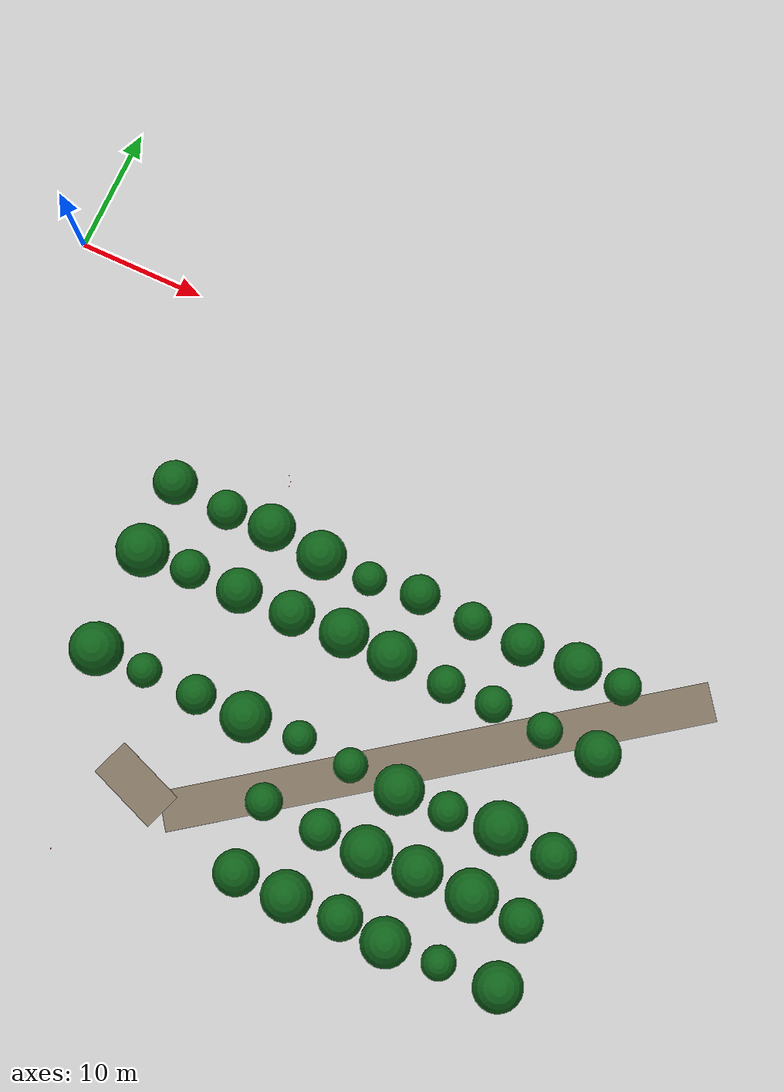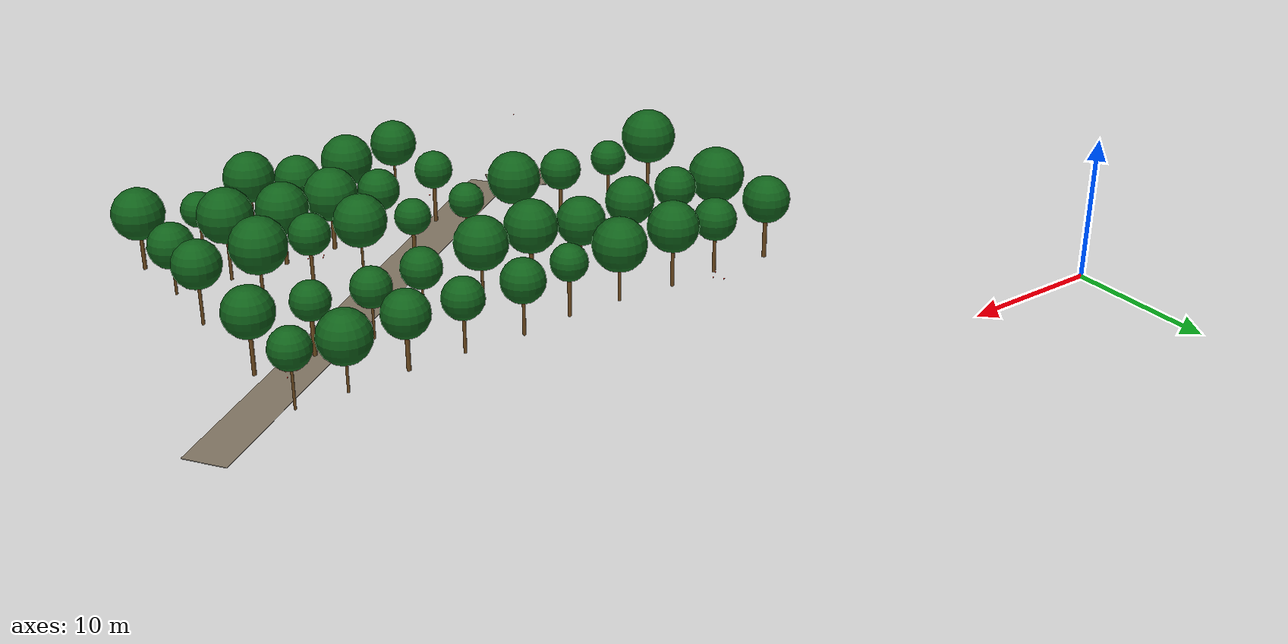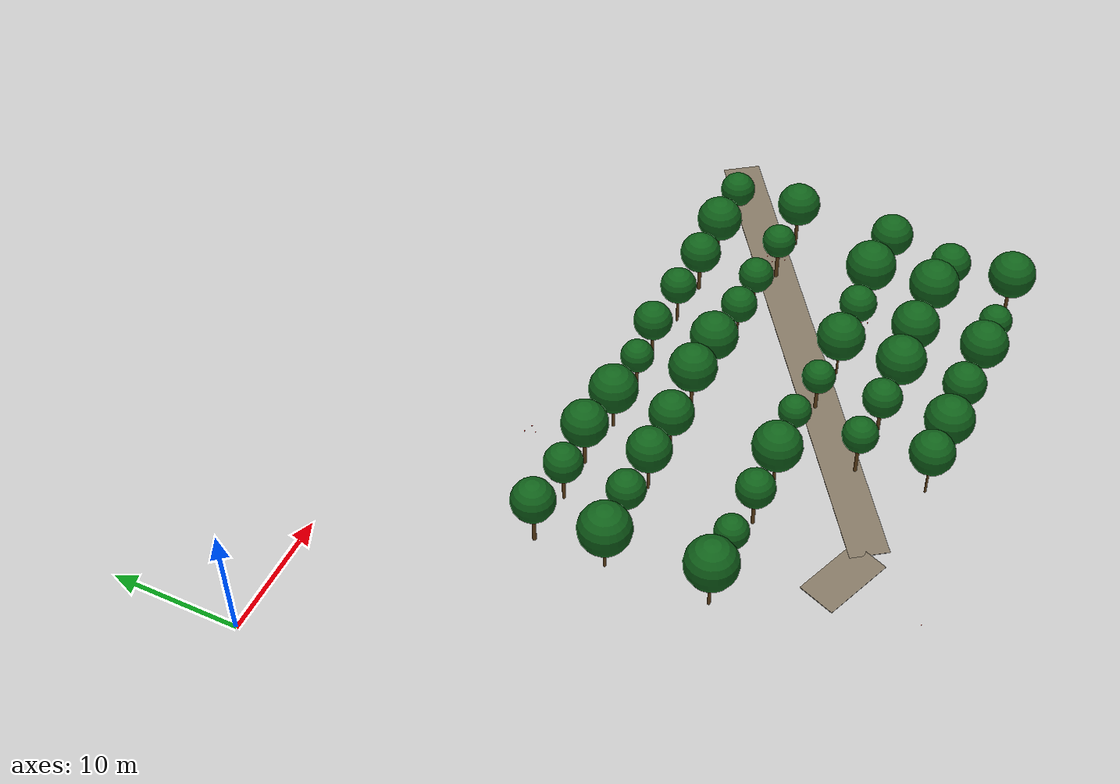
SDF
<sdf version="1.9">
 <world name="cheongsong_orchard">
  <model name="road_10">
   <static>true</static>
   <pose>41.6 -24.8 0.02 0 0 0.6248</pose>
   <link name="link">
    <collision name="collision">
     <geometry><box><size>41.4 3.0 0.04</size></box></geometry>
     <surface><friction><ode><mu>0.9</mu><mu2>0.9</mu2></ode></friction></surface>
    </collision>
    <visual name="visual">
     <geometry><box><size>41.4 3.0 0.04</size></box></geometry>
     <material><ambient>0.4 0.35 0.28 1</ambient><diffuse>0.5 0.45 0.38 1</diffuse></material>
    </visual>
   </link>
  </model>
  <model name="road_17">
   <static>true</static>
   <pose>22.2 -35.9 0.02 0 0 -0.3609</pose>
   <link name="link">
    <collision name="collision">
     <geometry><box><size>5.7 3.0 0.04</size></box></geometry>
     <surface><friction><ode><mu>0.9</mu><mu2>0.9</mu2></ode></friction></surface>
    </collision>
    <visual name="visual">
     <geometry><box><size>5.7 3.0 0.04</size></box></geometry>
     <material><ambient>0.4 0.35 0.28 1</ambient><diffuse>0.5 0.45 0.38 1</diffuse></material>
    </visual>
   </link>
  </model>
  <model name="apple_tree_868">
   <static>true</static>
   <pose>32.01 -38.45 0 0 0 0</pose>
   <link name="link">
    <collision name="trunk_col">
     <pose>0 0 1.37 0 0 0</pose>
     <geometry><cylinder><radius>0.088</radius><length>2.75</length></cylinder></geometry>
    </collision>
    <visual name="trunk_vis">
     <pose>0 0 1.37 0 0 0</pose>
     <geometry><cylinder><radius>0.088</radius><length>2.75</length></cylinder></geometry>
     <material><ambient>0.35 0.22 0.08 1</ambient><diffuse>0.45 0.30 0.12 1</diffuse></material>
    </visual>
    <collision name="canopy_col">
     <pose>0 0 4.42 0 0 0</pose>
     <geometry><sphere><radius>1.68</radius></sphere></geometry>
    </collision>
    <visual name="canopy_vis">
     <pose>0 0 4.42 0 0 0</pose>
     <geometry><sphere><radius>1.68</radius></sphere></geometry>
     <material><ambient>0.04 0.28 0.06 1</ambient><diffuse>0.06 0.38 0.10 1</diffuse></material>
    </visual>
   </link>
  </model>
  <model name="apple_tree_869">
   <static>true</static>
   <pose>35.88 -38.45 0 0 0 0</pose>
   <link name="link">
    <collision name="trunk_col">
     <pose>0 0 1.07 0 0 0</pose>
     <geometry><cylinder><radius>0.104</radius><length>2.15</length></cylinder></geometry>
    </collision>
    <visual name="trunk_vis">
     <pose>0 0 1.07 0 0 0</pose>
     <geometry><cylinder><radius>0.104</radius><length>2.15</length></cylinder></geometry>
     <material><ambient>0.35 0.22 0.08 1</ambient><diffuse>0.45 0.30 0.12 1</diffuse></material>
    </visual>
    <collision name="canopy_col">
     <pose>0 0 4.02 0 0 0</pose>
     <geometry><sphere><radius>1.87</radius></sphere></geometry>
    </collision>
    <visual name="canopy_vis">
     <pose>0 0 4.02 0 0 0</pose>
     <geometry><sphere><radius>1.87</radius></sphere></geometry>
     <material><ambient>0.04 0.28 0.06 1</ambient><diffuse>0.06 0.38 0.10 1</diffuse></material>
    </visual>
   </link>
  </model>
  <model name="apple_tree_870">
   <static>true</static>
   <pose>39.95 -38.25 0 0 0 0</pose>
   <link name="link">
    <collision name="trunk_col">
     <pose>0 0 1.03 0 0 0</pose>
     <geometry><cylinder><radius>0.128</radius><length>2.07</length></cylinder></geometry>
    </collision>
    <visual name="trunk_vis">
     <pose>0 0 1.03 0 0 0</pose>
     <geometry><cylinder><radius>0.128</radius><length>2.07</length></cylinder></geometry>
     <material><ambient>0.35 0.22 0.08 1</ambient><diffuse>0.45 0.30 0.12 1</diffuse></material>
    </visual>
    <collision name="canopy_col">
     <pose>0 0 3.70 0 0 0</pose>
     <geometry><sphere><radius>1.64</radius></sphere></geometry>
    </collision>
    <visual name="canopy_vis">
     <pose>0 0 3.70 0 0 0</pose>
     <geometry><sphere><radius>1.64</radius></sphere></geometry>
     <material><ambient>0.04 0.28 0.06 1</ambient><diffuse>0.06 0.38 0.10 1</diffuse></material>
    </visual>
   </link>
  </model>
  <model name="apple_tree_871">
   <static>true</static>
   <pose>43.53 -38.43 0 0 0 0</pose>
   <link name="link">
    <collision name="trunk_col">
     <pose>0 0 1.39 0 0 0</pose>
     <geometry><cylinder><radius>0.123</radius><length>2.78</length></cylinder></geometry>
    </collision>
    <visual name="trunk_vis">
     <pose>0 0 1.39 0 0 0</pose>
     <geometry><cylinder><radius>0.123</radius><length>2.78</length></cylinder></geometry>
     <material><ambient>0.35 0.22 0.08 1</ambient><diffuse>0.45 0.30 0.12 1</diffuse></material>
    </visual>
    <collision name="canopy_col">
     <pose>0 0 4.60 0 0 0</pose>
     <geometry><sphere><radius>1.82</radius></sphere></geometry>
    </collision>
    <visual name="canopy_vis">
     <pose>0 0 4.60 0 0 0</pose>
     <geometry><sphere><radius>1.82</radius></sphere></geometry>
     <material><ambient>0.04 0.28 0.06 1</ambient><diffuse>0.06 0.38 0.10 1</diffuse></material>
    </visual>
   </link>
  </model>
  <model name="apple_tree_872">
   <static>true</static>
   <pose>47.52 -38.20 0 0 0 0</pose>
   <link name="link">
    <collision name="trunk_col">
     <pose>0 0 0.98 0 0 0</pose>
     <geometry><cylinder><radius>0.093</radius><length>1.96</length></cylinder></geometry>
    </collision>
    <visual name="trunk_vis">
     <pose>0 0 0.98 0 0 0</pose>
     <geometry><cylinder><radius>0.093</radius><length>1.96</length></cylinder></geometry>
     <material><ambient>0.35 0.22 0.08 1</ambient><diffuse>0.45 0.30 0.12 1</diffuse></material>
    </visual>
    <collision name="canopy_col">
     <pose>0 0 3.23 0 0 0</pose>
     <geometry><sphere><radius>1.27</radius></sphere></geometry>
    </collision>
    <visual name="canopy_vis">
     <pose>0 0 3.23 0 0 0</pose>
     <geometry><sphere><radius>1.27</radius></sphere></geometry>
     <material><ambient>0.04 0.28 0.06 1</ambient><diffuse>0.06 0.38 0.10 1</diffuse></material>
    </visual>
   </link>
  </model>
  <model name="apple_tree_873">
   <static>true</static>
   <pose>51.90 -37.96 0 0 0 0</pose>
   <link name="link">
    <collision name="trunk_col">
     <pose>0 0 1.18 0 0 0</pose>
     <geometry><cylinder><radius>0.137</radius><length>2.36</length></cylinder></geometry>
    </collision>
    <visual name="trunk_vis">
     <pose>0 0 1.18 0 0 0</pose>
     <geometry><cylinder><radius>0.137</radius><length>2.36</length></cylinder></geometry>
     <material><ambient>0.35 0.22 0.08 1</ambient><diffuse>0.45 0.30 0.12 1</diffuse></material>
    </visual>
    <collision name="canopy_col">
     <pose>0 0 4.17 0 0 0</pose>
     <geometry><sphere><radius>1.82</radius></sphere></geometry>
    </collision>
    <visual name="canopy_vis">
     <pose>0 0 4.17 0 0 0</pose>
     <geometry><sphere><radius>1.82</radius></sphere></geometry>
     <material><ambient>0.04 0.28 0.06 1</ambient><diffuse>0.06 0.38 0.10 1</diffuse></material>
    </visual>
   </link>
  </model>
  <model name="apple_tree_920">
   <static>true</static>
   <pose>31.63 -33.17 0 0 0 0</pose>
   <link name="link">
    <collision name="trunk_col">
     <pose>0 0 1.36 0 0 0</pose>
     <geometry><cylinder><radius>0.134</radius><length>2.71</length></cylinder></geometry>
    </collision>
    <visual name="trunk_vis">
     <pose>0 0 1.36 0 0 0</pose>
     <geometry><cylinder><radius>0.134</radius><length>2.71</length></cylinder></geometry>
     <material><ambient>0.35 0.22 0.08 1</ambient><diffuse>0.45 0.30 0.12 1</diffuse></material>
    </visual>
    <collision name="canopy_col">
     <pose>0 0 4.07 0 0 0</pose>
     <geometry><sphere><radius>1.36</radius></sphere></geometry>
    </collision>
    <visual name="canopy_vis">
     <pose>0 0 4.07 0 0 0</pose>
     <geometry><sphere><radius>1.36</radius></sphere></geometry>
     <material><ambient>0.04 0.28 0.06 1</ambient><diffuse>0.06 0.38 0.10 1</diffuse></material>
    </visual>
   </link>
  </model>
  <model name="apple_tree_921">
   <static>true</static>
   <pose>36.06 -33.27 0 0 0 0</pose>
   <link name="link">
    <collision name="trunk_col">
     <pose>0 0 1.05 0 0 0</pose>
     <geometry><cylinder><radius>0.140</radius><length>2.09</length></cylinder></geometry>
    </collision>
    <visual name="trunk_vis">
     <pose>0 0 1.05 0 0 0</pose>
     <geometry><cylinder><radius>0.140</radius><length>2.09</length></cylinder></geometry>
     <material><ambient>0.35 0.22 0.08 1</ambient><diffuse>0.45 0.30 0.12 1</diffuse></material>
    </visual>
    <collision name="canopy_col">
     <pose>0 0 3.59 0 0 0</pose>
     <geometry><sphere><radius>1.50</radius></sphere></geometry>
    </collision>
    <visual name="canopy_vis">
     <pose>0 0 3.59 0 0 0</pose>
     <geometry><sphere><radius>1.50</radius></sphere></geometry>
     <material><ambient>0.04 0.28 0.06 1</ambient><diffuse>0.06 0.38 0.10 1</diffuse></material>
    </visual>
   </link>
  </model>
  <model name="apple_tree_922">
   <static>true</static>
   <pose>39.73 -33.32 0 0 0 0</pose>
   <link name="link">
    <collision name="trunk_col">
     <pose>0 0 1.15 0 0 0</pose>
     <geometry><cylinder><radius>0.148</radius><length>2.29</length></cylinder></geometry>
    </collision>
    <visual name="trunk_vis">
     <pose>0 0 1.15 0 0 0</pose>
     <geometry><cylinder><radius>0.148</radius><length>2.29</length></cylinder></geometry>
     <material><ambient>0.35 0.22 0.08 1</ambient><diffuse>0.45 0.30 0.12 1</diffuse></material>
    </visual>
    <collision name="canopy_col">
     <pose>0 0 4.19 0 0 0</pose>
     <geometry><sphere><radius>1.90</radius></sphere></geometry>
    </collision>
    <visual name="canopy_vis">
     <pose>0 0 4.19 0 0 0</pose>
     <geometry><sphere><radius>1.90</radius></sphere></geometry>
     <material><ambient>0.04 0.28 0.06 1</ambient><diffuse>0.06 0.38 0.10 1</diffuse></material>
    </visual>
   </link>
  </model>
  <model name="apple_tree_923">
   <static>true</static>
   <pose>43.56 -33.05 0 0 0 0</pose>
   <link name="link">
    <collision name="trunk_col">
     <pose>0 0 1.19 0 0 0</pose>
     <geometry><cylinder><radius>0.149</radius><length>2.38</length></cylinder></geometry>
    </collision>
    <visual name="trunk_vis">
     <pose>0 0 1.19 0 0 0</pose>
     <geometry><cylinder><radius>0.149</radius><length>2.38</length></cylinder></geometry>
     <material><ambient>0.35 0.22 0.08 1</ambient><diffuse>0.45 0.30 0.12 1</diffuse></material>
    </visual>
    <collision name="canopy_col">
     <pose>0 0 4.23 0 0 0</pose>
     <geometry><sphere><radius>1.84</radius></sphere></geometry>
    </collision>
    <visual name="canopy_vis">
     <pose>0 0 4.23 0 0 0</pose>
     <geometry><sphere><radius>1.84</radius></sphere></geometry>
     <material><ambient>0.04 0.28 0.06 1</ambient><diffuse>0.06 0.38 0.10 1</diffuse></material>
    </visual>
   </link>
  </model>
  <model name="apple_tree_924">
   <static>true</static>
   <pose>47.68 -33.01 0 0 0 0</pose>
   <link name="link">
    <collision name="trunk_col">
     <pose>0 0 1.45 0 0 0</pose>
     <geometry><cylinder><radius>0.110</radius><length>2.90</length></cylinder></geometry>
    </collision>
    <visual name="trunk_vis">
     <pose>0 0 1.45 0 0 0</pose>
     <geometry><cylinder><radius>0.110</radius><length>2.90</length></cylinder></geometry>
     <material><ambient>0.35 0.22 0.08 1</ambient><diffuse>0.45 0.30 0.12 1</diffuse></material>
    </visual>
    <collision name="canopy_col">
     <pose>0 0 4.81 0 0 0</pose>
     <geometry><sphere><radius>1.92</radius></sphere></geometry>
    </collision>
    <visual name="canopy_vis">
     <pose>0 0 4.81 0 0 0</pose>
     <geometry><sphere><radius>1.92</radius></sphere></geometry>
     <material><ambient>0.04 0.28 0.06 1</ambient><diffuse>0.06 0.38 0.10 1</diffuse></material>
    </visual>
   </link>
  </model>
  <model name="apple_tree_925">
   <static>true</static>
   <pose>51.59 -33.14 0 0 0 0</pose>
   <link name="link">
    <collision name="trunk_col">
     <pose>0 0 1.02 0 0 0</pose>
     <geometry><cylinder><radius>0.095</radius><length>2.03</length></cylinder></geometry>
    </collision>
    <visual name="trunk_vis">
     <pose>0 0 1.02 0 0 0</pose>
     <geometry><cylinder><radius>0.095</radius><length>2.03</length></cylinder></geometry>
     <material><ambient>0.35 0.22 0.08 1</ambient><diffuse>0.45 0.30 0.12 1</diffuse></material>
    </visual>
    <collision name="canopy_col">
     <pose>0 0 3.61 0 0 0</pose>
     <geometry><sphere><radius>1.58</radius></sphere></geometry>
    </collision>
    <visual name="canopy_vis">
     <pose>0 0 3.61 0 0 0</pose>
     <geometry><sphere><radius>1.58</radius></sphere></geometry>
     <material><ambient>0.04 0.28 0.06 1</ambient><diffuse>0.06 0.38 0.10 1</diffuse></material>
    </visual>
   </link>
  </model>
  <model name="apple_tree_973">
   <static>true</static>
   <pose>16.05 -28.33 0 0 0 0</pose>
   <link name="link">
    <collision name="trunk_col">
     <pose>0 0 1.31 0 0 0</pose>
     <geometry><cylinder><radius>0.121</radius><length>2.63</length></cylinder></geometry>
    </collision>
    <visual name="trunk_vis">
     <pose>0 0 1.31 0 0 0</pose>
     <geometry><cylinder><radius>0.121</radius><length>2.63</length></cylinder></geometry>
     <material><ambient>0.35 0.22 0.08 1</ambient><diffuse>0.45 0.30 0.12 1</diffuse></material>
    </visual>
    <collision name="canopy_col">
     <pose>0 0 4.62 0 0 0</pose>
     <geometry><sphere><radius>1.99</radius></sphere></geometry>
    </collision>
    <visual name="canopy_vis">
     <pose>0 0 4.62 0 0 0</pose>
     <geometry><sphere><radius>1.99</radius></sphere></geometry>
     <material><ambient>0.04 0.28 0.06 1</ambient><diffuse>0.06 0.38 0.10 1</diffuse></material>
    </visual>
   </link>
  </model>
  <model name="apple_tree_974">
   <static>true</static>
   <pose>19.74 -28.26 0 0 0 0</pose>
   <link name="link">
    <collision name="trunk_col">
     <pose>0 0 1.25 0 0 0</pose>
     <geometry><cylinder><radius>0.137</radius><length>2.51</length></cylinder></geometry>
    </collision>
    <visual name="trunk_vis">
     <pose>0 0 1.25 0 0 0</pose>
     <geometry><cylinder><radius>0.137</radius><length>2.51</length></cylinder></geometry>
     <material><ambient>0.35 0.22 0.08 1</ambient><diffuse>0.45 0.30 0.12 1</diffuse></material>
    </visual>
    <collision name="canopy_col">
     <pose>0 0 3.79 0 0 0</pose>
     <geometry><sphere><radius>1.28</radius></sphere></geometry>
    </collision>
    <visual name="canopy_vis">
     <pose>0 0 3.79 0 0 0</pose>
     <geometry><sphere><radius>1.28</radius></sphere></geometry>
     <material><ambient>0.04 0.28 0.06 1</ambient><diffuse>0.06 0.38 0.10 1</diffuse></material>
    </visual>
   </link>
  </model>
  <model name="apple_tree_975">
   <static>true</static>
   <pose>23.92 -28.29 0 0 0 0</pose>
   <link name="link">
    <collision name="trunk_col">
     <pose>0 0 1.22 0 0 0</pose>
     <geometry><cylinder><radius>0.134</radius><length>2.44</length></cylinder></geometry>
    </collision>
    <visual name="trunk_vis">
     <pose>0 0 1.22 0 0 0</pose>
     <geometry><cylinder><radius>0.134</radius><length>2.44</length></cylinder></geometry>
     <material><ambient>0.35 0.22 0.08 1</ambient><diffuse>0.45 0.30 0.12 1</diffuse></material>
    </visual>
    <collision name="canopy_col">
     <pose>0 0 3.91 0 0 0</pose>
     <geometry><sphere><radius>1.47</radius></sphere></geometry>
    </collision>
    <visual name="canopy_vis">
     <pose>0 0 3.91 0 0 0</pose>
     <geometry><sphere><radius>1.47</radius></sphere></geometry>
     <material><ambient>0.04 0.28 0.06 1</ambient><diffuse>0.06 0.38 0.10 1</diffuse></material>
    </visual>
   </link>
  </model>
  <model name="apple_tree_976">
   <static>true</static>
   <pose>27.88 -28.27 0 0 0 0</pose>
   <link name="link">
    <collision name="trunk_col">
     <pose>0 0 1.19 0 0 0</pose>
     <geometry><cylinder><radius>0.115</radius><length>2.38</length></cylinder></geometry>
    </collision>
    <visual name="trunk_vis">
     <pose>0 0 1.19 0 0 0</pose>
     <geometry><cylinder><radius>0.115</radius><length>2.38</length></cylinder></geometry>
     <material><ambient>0.35 0.22 0.08 1</ambient><diffuse>0.45 0.30 0.12 1</diffuse></material>
    </visual>
    <collision name="canopy_col">
     <pose>0 0 4.25 0 0 0</pose>
     <geometry><sphere><radius>1.88</radius></sphere></geometry>
    </collision>
    <visual name="canopy_vis">
     <pose>0 0 4.25 0 0 0</pose>
     <geometry><sphere><radius>1.88</radius></sphere></geometry>
     <material><ambient>0.04 0.28 0.06 1</ambient><diffuse>0.06 0.38 0.10 1</diffuse></material>
    </visual>
   </link>
  </model>
  <model name="apple_tree_977">
   <static>true</static>
   <pose>31.98 -27.99 0 0 0 0</pose>
   <link name="link">
    <collision name="trunk_col">
     <pose>0 0 1.24 0 0 0</pose>
     <geometry><cylinder><radius>0.100</radius><length>2.47</length></cylinder></geometry>
    </collision>
    <visual name="trunk_vis">
     <pose>0 0 1.24 0 0 0</pose>
     <geometry><cylinder><radius>0.100</radius><length>2.47</length></cylinder></geometry>
     <material><ambient>0.35 0.22 0.08 1</ambient><diffuse>0.45 0.30 0.12 1</diffuse></material>
    </visual>
    <collision name="canopy_col">
     <pose>0 0 3.71 0 0 0</pose>
     <geometry><sphere><radius>1.24</radius></sphere></geometry>
    </collision>
    <visual name="canopy_vis">
     <pose>0 0 3.71 0 0 0</pose>
     <geometry><sphere><radius>1.24</radius></sphere></geometry>
     <material><ambient>0.04 0.28 0.06 1</ambient><diffuse>0.06 0.38 0.10 1</diffuse></material>
    </visual>
   </link>
  </model>
  <model name="apple_tree_978">
   <static>true</static>
   <pose>36.11 -28.25 0 0 0 0</pose>
   <link name="link">
    <collision name="trunk_col">
     <pose>0 0 1.09 0 0 0</pose>
     <geometry><cylinder><radius>0.132</radius><length>2.17</length></cylinder></geometry>
    </collision>
    <visual name="trunk_vis">
     <pose>0 0 1.09 0 0 0</pose>
     <geometry><cylinder><radius>0.132</radius><length>2.17</length></cylinder></geometry>
     <material><ambient>0.35 0.22 0.08 1</ambient><diffuse>0.45 0.30 0.12 1</diffuse></material>
    </visual>
    <collision name="canopy_col">
     <pose>0 0 3.44 0 0 0</pose>
     <geometry><sphere><radius>1.27</radius></sphere></geometry>
    </collision>
    <visual name="canopy_vis">
     <pose>0 0 3.44 0 0 0</pose>
     <geometry><sphere><radius>1.27</radius></sphere></geometry>
     <material><ambient>0.04 0.28 0.06 1</ambient><diffuse>0.06 0.38 0.10 1</diffuse></material>
    </visual>
   </link>
  </model>
  <model name="apple_tree_979">
   <static>true</static>
   <pose>40.02 -28.43 0 0 0 0</pose>
   <link name="link">
    <collision name="trunk_col">
     <pose>0 0 1.14 0 0 0</pose>
     <geometry><cylinder><radius>0.085</radius><length>2.28</length></cylinder></geometry>
    </collision>
    <visual name="trunk_vis">
     <pose>0 0 1.14 0 0 0</pose>
     <geometry><cylinder><radius>0.085</radius><length>2.28</length></cylinder></geometry>
     <material><ambient>0.35 0.22 0.08 1</ambient><diffuse>0.45 0.30 0.12 1</diffuse></material>
    </visual>
    <collision name="canopy_col">
     <pose>0 0 4.12 0 0 0</pose>
     <geometry><sphere><radius>1.84</radius></sphere></geometry>
    </collision>
    <visual name="canopy_vis">
     <pose>0 0 4.12 0 0 0</pose>
     <geometry><sphere><radius>1.84</radius></sphere></geometry>
     <material><ambient>0.04 0.28 0.06 1</ambient><diffuse>0.06 0.38 0.10 1</diffuse></material>
    </visual>
   </link>
  </model>
  <model name="apple_tree_980">
   <static>true</static>
   <pose>43.80 -28.36 0 0 0 0</pose>
   <link name="link">
    <collision name="trunk_col">
     <pose>0 0 1.36 0 0 0</pose>
     <geometry><cylinder><radius>0.126</radius><length>2.73</length></cylinder></geometry>
    </collision>
    <visual name="trunk_vis">
     <pose>0 0 1.36 0 0 0</pose>
     <geometry><cylinder><radius>0.126</radius><length>2.73</length></cylinder></geometry>
     <material><ambient>0.35 0.22 0.08 1</ambient><diffuse>0.45 0.30 0.12 1</diffuse></material>
    </visual>
    <collision name="canopy_col">
     <pose>0 0 4.17 0 0 0</pose>
     <geometry><sphere><radius>1.44</radius></sphere></geometry>
    </collision>
    <visual name="canopy_vis">
     <pose>0 0 4.17 0 0 0</pose>
     <geometry><sphere><radius>1.44</radius></sphere></geometry>
     <material><ambient>0.04 0.28 0.06 1</ambient><diffuse>0.06 0.38 0.10 1</diffuse></material>
    </visual>
   </link>
  </model>
  <model name="apple_tree_981">
   <static>true</static>
   <pose>47.64 -27.91 0 0 0 0</pose>
   <link name="link">
    <collision name="trunk_col">
     <pose>0 0 1.34 0 0 0</pose>
     <geometry><cylinder><radius>0.113</radius><length>2.67</length></cylinder></geometry>
    </collision>
    <visual name="trunk_vis">
     <pose>0 0 1.34 0 0 0</pose>
     <geometry><cylinder><radius>0.113</radius><length>2.67</length></cylinder></geometry>
     <material><ambient>0.35 0.22 0.08 1</ambient><diffuse>0.45 0.30 0.12 1</diffuse></material>
    </visual>
    <collision name="canopy_col">
     <pose>0 0 4.62 0 0 0</pose>
     <geometry><sphere><radius>1.95</radius></sphere></geometry>
    </collision>
    <visual name="canopy_vis">
     <pose>0 0 4.62 0 0 0</pose>
     <geometry><sphere><radius>1.95</radius></sphere></geometry>
     <material><ambient>0.04 0.28 0.06 1</ambient><diffuse>0.06 0.38 0.10 1</diffuse></material>
    </visual>
   </link>
  </model>
  <model name="apple_tree_982">
   <static>true</static>
   <pose>51.83 -28.12 0 0 0 0</pose>
   <link name="link">
    <collision name="trunk_col">
     <pose>0 0 1.35 0 0 0</pose>
     <geometry><cylinder><radius>0.110</radius><length>2.70</length></cylinder></geometry>
    </collision>
    <visual name="trunk_vis">
     <pose>0 0 1.35 0 0 0</pose>
     <geometry><cylinder><radius>0.110</radius><length>2.70</length></cylinder></geometry>
     <material><ambient>0.35 0.22 0.08 1</ambient><diffuse>0.45 0.30 0.12 1</diffuse></material>
    </visual>
    <collision name="canopy_col">
     <pose>0 0 4.35 0 0 0</pose>
     <geometry><sphere><radius>1.65</radius></sphere></geometry>
    </collision>
    <visual name="canopy_vis">
     <pose>0 0 4.35 0 0 0</pose>
     <geometry><sphere><radius>1.65</radius></sphere></geometry>
     <material><ambient>0.04 0.28 0.06 1</ambient><diffuse>0.06 0.38 0.10 1</diffuse></material>
    </visual>
   </link>
  </model>
  <model name="apple_tree_1032">
   <static>true</static>
   <pose>15.81 -20.43 0 0 0 0</pose>
   <link name="link">
    <collision name="trunk_col">
     <pose>0 0 1.14 0 0 0</pose>
     <geometry><cylinder><radius>0.100</radius><length>2.27</length></cylinder></geometry>
    </collision>
    <visual name="trunk_vis">
     <pose>0 0 1.14 0 0 0</pose>
     <geometry><cylinder><radius>0.100</radius><length>2.27</length></cylinder></geometry>
     <material><ambient>0.35 0.22 0.08 1</ambient><diffuse>0.45 0.30 0.12 1</diffuse></material>
    </visual>
    <collision name="canopy_col">
     <pose>0 0 4.26 0 0 0</pose>
     <geometry><sphere><radius>1.99</radius></sphere></geometry>
    </collision>
    <visual name="canopy_vis">
     <pose>0 0 4.26 0 0 0</pose>
     <geometry><sphere><radius>1.99</radius></sphere></geometry>
     <material><ambient>0.04 0.28 0.06 1</ambient><diffuse>0.06 0.38 0.10 1</diffuse></material>
    </visual>
   </link>
  </model>
  <model name="apple_tree_1033">
   <static>true</static>
   <pose>19.58 -20.27 0 0 0 0</pose>
   <link name="link">
    <collision name="trunk_col">
     <pose>0 0 1.43 0 0 0</pose>
     <geometry><cylinder><radius>0.087</radius><length>2.86</length></cylinder></geometry>
    </collision>
    <visual name="trunk_vis">
     <pose>0 0 1.43 0 0 0</pose>
     <geometry><cylinder><radius>0.087</radius><length>2.86</length></cylinder></geometry>
     <material><ambient>0.35 0.22 0.08 1</ambient><diffuse>0.45 0.30 0.12 1</diffuse></material>
    </visual>
    <collision name="canopy_col">
     <pose>0 0 4.31 0 0 0</pose>
     <geometry><sphere><radius>1.46</radius></sphere></geometry>
    </collision>
    <visual name="canopy_vis">
     <pose>0 0 4.31 0 0 0</pose>
     <geometry><sphere><radius>1.46</radius></sphere></geometry>
     <material><ambient>0.04 0.28 0.06 1</ambient><diffuse>0.06 0.38 0.10 1</diffuse></material>
    </visual>
   </link>
  </model>
  <model name="apple_tree_1034">
   <static>true</static>
   <pose>23.53 -20.21 0 0 0 0</pose>
   <link name="link">
    <collision name="trunk_col">
     <pose>0 0 1.32 0 0 0</pose>
     <geometry><cylinder><radius>0.114</radius><length>2.64</length></cylinder></geometry>
    </collision>
    <visual name="trunk_vis">
     <pose>0 0 1.32 0 0 0</pose>
     <geometry><cylinder><radius>0.114</radius><length>2.64</length></cylinder></geometry>
     <material><ambient>0.35 0.22 0.08 1</ambient><diffuse>0.45 0.30 0.12 1</diffuse></material>
    </visual>
    <collision name="canopy_col">
     <pose>0 0 4.34 0 0 0</pose>
     <geometry><sphere><radius>1.70</radius></sphere></geometry>
    </collision>
    <visual name="canopy_vis">
     <pose>0 0 4.34 0 0 0</pose>
     <geometry><sphere><radius>1.70</radius></sphere></geometry>
     <material><ambient>0.04 0.28 0.06 1</ambient><diffuse>0.06 0.38 0.10 1</diffuse></material>
    </visual>
   </link>
  </model>
  <model name="apple_tree_1035">
   <static>true</static>
   <pose>27.67 -20.09 0 0 0 0</pose>
   <link name="link">
    <collision name="trunk_col">
     <pose>0 0 1.14 0 0 0</pose>
     <geometry><cylinder><radius>0.083</radius><length>2.27</length></cylinder></geometry>
    </collision>
    <visual name="trunk_vis">
     <pose>0 0 1.14 0 0 0</pose>
     <geometry><cylinder><radius>0.083</radius><length>2.27</length></cylinder></geometry>
     <material><ambient>0.35 0.22 0.08 1</ambient><diffuse>0.45 0.30 0.12 1</diffuse></material>
    </visual>
    <collision name="canopy_col">
     <pose>0 0 3.97 0 0 0</pose>
     <geometry><sphere><radius>1.70</radius></sphere></geometry>
    </collision>
    <visual name="canopy_vis">
     <pose>0 0 3.97 0 0 0</pose>
     <geometry><sphere><radius>1.70</radius></sphere></geometry>
     <material><ambient>0.04 0.28 0.06 1</ambient><diffuse>0.06 0.38 0.10 1</diffuse></material>
    </visual>
   </link>
  </model>
  <model name="apple_tree_1036">
   <static>true</static>
   <pose>31.78 -19.92 0 0 0 0</pose>
   <link name="link">
    <collision name="trunk_col">
     <pose>0 0 1.46 0 0 0</pose>
     <geometry><cylinder><radius>0.143</radius><length>2.92</length></cylinder></geometry>
    </collision>
    <visual name="trunk_vis">
     <pose>0 0 1.46 0 0 0</pose>
     <geometry><cylinder><radius>0.143</radius><length>2.92</length></cylinder></geometry>
     <material><ambient>0.35 0.22 0.08 1</ambient><diffuse>0.45 0.30 0.12 1</diffuse></material>
    </visual>
    <collision name="canopy_col">
     <pose>0 0 4.76 0 0 0</pose>
     <geometry><sphere><radius>1.84</radius></sphere></geometry>
    </collision>
    <visual name="canopy_vis">
     <pose>0 0 4.76 0 0 0</pose>
     <geometry><sphere><radius>1.84</radius></sphere></geometry>
     <material><ambient>0.04 0.28 0.06 1</ambient><diffuse>0.06 0.38 0.10 1</diffuse></material>
    </visual>
   </link>
  </model>
  <model name="apple_tree_1037">
   <static>true</static>
   <pose>35.59 -19.97 0 0 0 0</pose>
   <link name="link">
    <collision name="trunk_col">
     <pose>0 0 1.37 0 0 0</pose>
     <geometry><cylinder><radius>0.100</radius><length>2.73</length></cylinder></geometry>
    </collision>
    <visual name="trunk_vis">
     <pose>0 0 1.37 0 0 0</pose>
     <geometry><cylinder><radius>0.100</radius><length>2.73</length></cylinder></geometry>
     <material><ambient>0.35 0.22 0.08 1</ambient><diffuse>0.45 0.30 0.12 1</diffuse></material>
    </visual>
    <collision name="canopy_col">
     <pose>0 0 4.57 0 0 0</pose>
     <geometry><sphere><radius>1.84</radius></sphere></geometry>
    </collision>
    <visual name="canopy_vis">
     <pose>0 0 4.57 0 0 0</pose>
     <geometry><sphere><radius>1.84</radius></sphere></geometry>
     <material><ambient>0.04 0.28 0.06 1</ambient><diffuse>0.06 0.38 0.10 1</diffuse></material>
    </visual>
   </link>
  </model>
  <model name="apple_tree_1038">
   <static>true</static>
   <pose>39.96 -20.16 0 0 0 0</pose>
   <link name="link">
    <collision name="trunk_col">
     <pose>0 0 1.27 0 0 0</pose>
     <geometry><cylinder><radius>0.086</radius><length>2.54</length></cylinder></geometry>
    </collision>
    <visual name="trunk_vis">
     <pose>0 0 1.27 0 0 0</pose>
     <geometry><cylinder><radius>0.086</radius><length>2.54</length></cylinder></geometry>
     <material><ambient>0.35 0.22 0.08 1</ambient><diffuse>0.45 0.30 0.12 1</diffuse></material>
    </visual>
    <collision name="canopy_col">
     <pose>0 0 3.94 0 0 0</pose>
     <geometry><sphere><radius>1.40</radius></sphere></geometry>
    </collision>
    <visual name="canopy_vis">
     <pose>0 0 3.94 0 0 0</pose>
     <geometry><sphere><radius>1.40</radius></sphere></geometry>
     <material><ambient>0.04 0.28 0.06 1</ambient><diffuse>0.06 0.38 0.10 1</diffuse></material>
    </visual>
   </link>
  </model>
  <model name="apple_tree_1039">
   <static>true</static>
   <pose>43.65 -20.03 0 0 0 0</pose>
   <link name="link">
    <collision name="trunk_col">
     <pose>0 0 1.17 0 0 0</pose>
     <geometry><cylinder><radius>0.081</radius><length>2.34</length></cylinder></geometry>
    </collision>
    <visual name="trunk_vis">
     <pose>0 0 1.17 0 0 0</pose>
     <geometry><cylinder><radius>0.081</radius><length>2.34</length></cylinder></geometry>
     <material><ambient>0.35 0.22 0.08 1</ambient><diffuse>0.45 0.30 0.12 1</diffuse></material>
    </visual>
    <collision name="canopy_col">
     <pose>0 0 3.71 0 0 0</pose>
     <geometry><sphere><radius>1.37</radius></sphere></geometry>
    </collision>
    <visual name="canopy_vis">
     <pose>0 0 3.71 0 0 0</pose>
     <geometry><sphere><radius>1.37</radius></sphere></geometry>
     <material><ambient>0.04 0.28 0.06 1</ambient><diffuse>0.06 0.38 0.10 1</diffuse></material>
    </visual>
   </link>
  </model>
  <model name="apple_tree_1040">
   <static>true</static>
   <pose>47.74 -20.25 0 0 0 0</pose>
   <link name="link">
    <collision name="trunk_col">
     <pose>0 0 1.29 0 0 0</pose>
     <geometry><cylinder><radius>0.147</radius><length>2.58</length></cylinder></geometry>
    </collision>
    <visual name="trunk_vis">
     <pose>0 0 1.29 0 0 0</pose>
     <geometry><cylinder><radius>0.147</radius><length>2.58</length></cylinder></geometry>
     <material><ambient>0.35 0.22 0.08 1</ambient><diffuse>0.45 0.30 0.12 1</diffuse></material>
    </visual>
    <collision name="canopy_col">
     <pose>0 0 3.90 0 0 0</pose>
     <geometry><sphere><radius>1.32</radius></sphere></geometry>
    </collision>
    <visual name="canopy_vis">
     <pose>0 0 3.90 0 0 0</pose>
     <geometry><sphere><radius>1.32</radius></sphere></geometry>
     <material><ambient>0.04 0.28 0.06 1</ambient><diffuse>0.06 0.38 0.10 1</diffuse></material>
    </visual>
   </link>
  </model>
  <model name="apple_tree_1041">
   <static>true</static>
   <pose>51.85 -20.24 0 0 0 0</pose>
   <link name="link">
    <collision name="trunk_col">
     <pose>0 0 1.34 0 0 0</pose>
     <geometry><cylinder><radius>0.137</radius><length>2.69</length></cylinder></geometry>
    </collision>
    <visual name="trunk_vis">
     <pose>0 0 1.34 0 0 0</pose>
     <geometry><cylinder><radius>0.137</radius><length>2.69</length></cylinder></geometry>
     <material><ambient>0.35 0.22 0.08 1</ambient><diffuse>0.45 0.30 0.12 1</diffuse></material>
    </visual>
    <collision name="canopy_col">
     <pose>0 0 4.38 0 0 0</pose>
     <geometry><sphere><radius>1.69</radius></sphere></geometry>
    </collision>
    <visual name="canopy_vis">
     <pose>0 0 4.38 0 0 0</pose>
     <geometry><sphere><radius>1.69</radius></sphere></geometry>
     <material><ambient>0.04 0.28 0.06 1</ambient><diffuse>0.06 0.38 0.10 1</diffuse></material>
    </visual>
   </link>
  </model>
  <model name="apple_tree_1091">
   <static>true</static>
   <pose>15.78 -14.90 0 0 0 0</pose>
   <link name="link">
    <collision name="trunk_col">
     <pose>0 0 1.37 0 0 0</pose>
     <geometry><cylinder><radius>0.149</radius><length>2.74</length></cylinder></geometry>
    </collision>
    <visual name="trunk_vis">
     <pose>0 0 1.37 0 0 0</pose>
     <geometry><cylinder><radius>0.149</radius><length>2.74</length></cylinder></geometry>
     <material><ambient>0.35 0.22 0.08 1</ambient><diffuse>0.45 0.30 0.12 1</diffuse></material>
    </visual>
    <collision name="canopy_col">
     <pose>0 0 4.39 0 0 0</pose>
     <geometry><sphere><radius>1.65</radius></sphere></geometry>
    </collision>
    <visual name="canopy_vis">
     <pose>0 0 4.39 0 0 0</pose>
     <geometry><sphere><radius>1.65</radius></sphere></geometry>
     <material><ambient>0.04 0.28 0.06 1</ambient><diffuse>0.06 0.38 0.10 1</diffuse></material>
    </visual>
   </link>
  </model>
  <model name="apple_tree_1092">
   <static>true</static>
   <pose>20.05 -15.11 0 0 0 0</pose>
   <link name="link">
    <collision name="trunk_col">
     <pose>0 0 1.23 0 0 0</pose>
     <geometry><cylinder><radius>0.122</radius><length>2.47</length></cylinder></geometry>
    </collision>
    <visual name="trunk_vis">
     <pose>0 0 1.23 0 0 0</pose>
     <geometry><cylinder><radius>0.122</radius><length>2.47</length></cylinder></geometry>
     <material><ambient>0.35 0.22 0.08 1</ambient><diffuse>0.45 0.30 0.12 1</diffuse></material>
    </visual>
    <collision name="canopy_col">
     <pose>0 0 3.95 0 0 0</pose>
     <geometry><sphere><radius>1.48</radius></sphere></geometry>
    </collision>
    <visual name="canopy_vis">
     <pose>0 0 3.95 0 0 0</pose>
     <geometry><sphere><radius>1.48</radius></sphere></geometry>
     <material><ambient>0.04 0.28 0.06 1</ambient><diffuse>0.06 0.38 0.10 1</diffuse></material>
    </visual>
   </link>
  </model>
  <model name="apple_tree_1093">
   <static>true</static>
   <pose>23.68 -15.02 0 0 0 0</pose>
   <link name="link">
    <collision name="trunk_col">
     <pose>0 0 1.32 0 0 0</pose>
     <geometry><cylinder><radius>0.127</radius><length>2.65</length></cylinder></geometry>
    </collision>
    <visual name="trunk_vis">
     <pose>0 0 1.32 0 0 0</pose>
     <geometry><cylinder><radius>0.127</radius><length>2.65</length></cylinder></geometry>
     <material><ambient>0.35 0.22 0.08 1</ambient><diffuse>0.45 0.30 0.12 1</diffuse></material>
    </visual>
    <collision name="canopy_col">
     <pose>0 0 4.42 0 0 0</pose>
     <geometry><sphere><radius>1.77</radius></sphere></geometry>
    </collision>
    <visual name="canopy_vis">
     <pose>0 0 4.42 0 0 0</pose>
     <geometry><sphere><radius>1.77</radius></sphere></geometry>
     <material><ambient>0.04 0.28 0.06 1</ambient><diffuse>0.06 0.38 0.10 1</diffuse></material>
    </visual>
   </link>
  </model>
  <model name="apple_tree_1094">
   <static>true</static>
   <pose>27.82 -15.34 0 0 0 0</pose>
   <link name="link">
    <collision name="trunk_col">
     <pose>0 0 1.13 0 0 0</pose>
     <geometry><cylinder><radius>0.121</radius><length>2.27</length></cylinder></geometry>
    </collision>
    <visual name="trunk_vis">
     <pose>0 0 1.13 0 0 0</pose>
     <geometry><cylinder><radius>0.121</radius><length>2.27</length></cylinder></geometry>
     <material><ambient>0.35 0.22 0.08 1</ambient><diffuse>0.45 0.30 0.12 1</diffuse></material>
    </visual>
    <collision name="canopy_col">
     <pose>0 0 4.13 0 0 0</pose>
     <geometry><sphere><radius>1.86</radius></sphere></geometry>
    </collision>
    <visual name="canopy_vis">
     <pose>0 0 4.13 0 0 0</pose>
     <geometry><sphere><radius>1.86</radius></sphere></geometry>
     <material><ambient>0.04 0.28 0.06 1</ambient><diffuse>0.06 0.38 0.10 1</diffuse></material>
    </visual>
   </link>
  </model>
  <model name="apple_tree_1095">
   <static>true</static>
   <pose>31.73 -15.43 0 0 0 0</pose>
   <link name="link">
    <collision name="trunk_col">
     <pose>0 0 1.32 0 0 0</pose>
     <geometry><cylinder><radius>0.138</radius><length>2.64</length></cylinder></geometry>
    </collision>
    <visual name="trunk_vis">
     <pose>0 0 1.32 0 0 0</pose>
     <geometry><cylinder><radius>0.138</radius><length>2.64</length></cylinder></geometry>
     <material><ambient>0.35 0.22 0.08 1</ambient><diffuse>0.45 0.30 0.12 1</diffuse></material>
    </visual>
    <collision name="canopy_col">
     <pose>0 0 3.91 0 0 0</pose>
     <geometry><sphere><radius>1.27</radius></sphere></geometry>
    </collision>
    <visual name="canopy_vis">
     <pose>0 0 3.91 0 0 0</pose>
     <geometry><sphere><radius>1.27</radius></sphere></geometry>
     <material><ambient>0.04 0.28 0.06 1</ambient><diffuse>0.06 0.38 0.10 1</diffuse></material>
    </visual>
   </link>
  </model>
  <model name="apple_tree_1096">
   <static>true</static>
   <pose>35.55 -14.96 0 0 0 0</pose>
   <link name="link">
    <collision name="trunk_col">
     <pose>0 0 1.21 0 0 0</pose>
     <geometry><cylinder><radius>0.111</radius><length>2.41</length></cylinder></geometry>
    </collision>
    <visual name="trunk_vis">
     <pose>0 0 1.21 0 0 0</pose>
     <geometry><cylinder><radius>0.111</radius><length>2.41</length></cylinder></geometry>
     <material><ambient>0.35 0.22 0.08 1</ambient><diffuse>0.45 0.30 0.12 1</diffuse></material>
    </visual>
    <collision name="canopy_col">
     <pose>0 0 3.91 0 0 0</pose>
     <geometry><sphere><radius>1.50</radius></sphere></geometry>
    </collision>
    <visual name="canopy_vis">
     <pose>0 0 3.91 0 0 0</pose>
     <geometry><sphere><radius>1.50</radius></sphere></geometry>
     <material><ambient>0.04 0.28 0.06 1</ambient><diffuse>0.06 0.38 0.10 1</diffuse></material>
    </visual>
   </link>
  </model>
  <model name="apple_tree_1097">
   <static>true</static>
   <pose>39.83 -15.14 0 0 0 0</pose>
   <link name="link">
    <collision name="trunk_col">
     <pose>0 0 1.23 0 0 0</pose>
     <geometry><cylinder><radius>0.108</radius><length>2.46</length></cylinder></geometry>
    </collision>
    <visual name="trunk_vis">
     <pose>0 0 1.23 0 0 0</pose>
     <geometry><cylinder><radius>0.108</radius><length>2.46</length></cylinder></geometry>
     <material><ambient>0.35 0.22 0.08 1</ambient><diffuse>0.45 0.30 0.12 1</diffuse></material>
    </visual>
    <collision name="canopy_col">
     <pose>0 0 3.87 0 0 0</pose>
     <geometry><sphere><radius>1.41</radius></sphere></geometry>
    </collision>
    <visual name="canopy_vis">
     <pose>0 0 3.87 0 0 0</pose>
     <geometry><sphere><radius>1.41</radius></sphere></geometry>
     <material><ambient>0.04 0.28 0.06 1</ambient><diffuse>0.06 0.38 0.10 1</diffuse></material>
    </visual>
   </link>
  </model>
  <model name="apple_tree_1098">
   <static>true</static>
   <pose>43.81 -15.24 0 0 0 0</pose>
   <link name="link">
    <collision name="trunk_col">
     <pose>0 0 1.19 0 0 0</pose>
     <geometry><cylinder><radius>0.145</radius><length>2.38</length></cylinder></geometry>
    </collision>
    <visual name="trunk_vis">
     <pose>0 0 1.19 0 0 0</pose>
     <geometry><cylinder><radius>0.145</radius><length>2.38</length></cylinder></geometry>
     <material><ambient>0.35 0.22 0.08 1</ambient><diffuse>0.45 0.30 0.12 1</diffuse></material>
    </visual>
    <collision name="canopy_col">
     <pose>0 0 3.97 0 0 0</pose>
     <geometry><sphere><radius>1.59</radius></sphere></geometry>
    </collision>
    <visual name="canopy_vis">
     <pose>0 0 3.97 0 0 0</pose>
     <geometry><sphere><radius>1.59</radius></sphere></geometry>
     <material><ambient>0.04 0.28 0.06 1</ambient><diffuse>0.06 0.38 0.10 1</diffuse></material>
    </visual>
   </link>
  </model>
  <model name="apple_tree_1099">
   <static>true</static>
   <pose>48.09 -15.00 0 0 0 0</pose>
   <link name="link">
    <collision name="trunk_col">
     <pose>0 0 1.05 0 0 0</pose>
     <geometry><cylinder><radius>0.089</radius><length>2.09</length></cylinder></geometry>
    </collision>
    <visual name="trunk_vis">
     <pose>0 0 1.05 0 0 0</pose>
     <geometry><cylinder><radius>0.089</radius><length>2.09</length></cylinder></geometry>
     <material><ambient>0.35 0.22 0.08 1</ambient><diffuse>0.45 0.30 0.12 1</diffuse></material>
    </visual>
    <collision name="canopy_col">
     <pose>0 0 3.86 0 0 0</pose>
     <geometry><sphere><radius>1.77</radius></sphere></geometry>
    </collision>
    <visual name="canopy_vis">
     <pose>0 0 3.86 0 0 0</pose>
     <geometry><sphere><radius>1.77</radius></sphere></geometry>
     <material><ambient>0.04 0.28 0.06 1</ambient><diffuse>0.06 0.38 0.10 1</diffuse></material>
    </visual>
   </link>
  </model>
  <model name="apple_tree_1100">
   <static>true</static>
   <pose>51.59 -15.07 0 0 0 0</pose>
   <link name="link">
    <collision name="trunk_col">
     <pose>0 0 1.40 0 0 0</pose>
     <geometry><cylinder><radius>0.088</radius><length>2.79</length></cylinder></geometry>
    </collision>
    <visual name="trunk_vis">
     <pose>0 0 1.40 0 0 0</pose>
     <geometry><cylinder><radius>0.088</radius><length>2.79</length></cylinder></geometry>
     <material><ambient>0.35 0.22 0.08 1</ambient><diffuse>0.45 0.30 0.12 1</diffuse></material>
    </visual>
    <collision name="canopy_col">
     <pose>0 0 4.16 0 0 0</pose>
     <geometry><sphere><radius>1.37</radius></sphere></geometry>
    </collision>
    <visual name="canopy_vis">
     <pose>0 0 4.16 0 0 0</pose>
     <geometry><sphere><radius>1.37</radius></sphere></geometry>
     <material><ambient>0.04 0.28 0.06 1</ambient><diffuse>0.06 0.38 0.10 1</diffuse></material>
    </visual>
   </link>
  </model>
  <model name="apple_810_1">
   <static>true</static>
   <pose>19.03 -42.50 2.42 0 0 0</pose>
   <link name="link">
    <visual name="visual">
     <geometry><sphere><radius>0.04</radius></sphere></geometry>
     <material><ambient>0.7 0.05 0.02 1</ambient><diffuse>0.9 0.10 0.05 1</diffuse></material>
    </visual>
   </link>
  </model>
  <model name="apple_870_0">
   <static>true</static>
   <pose>40.52 -39.19 2.29 0 0 0</pose>
   <link name="link">
    <visual name="visual">
     <geometry><sphere><radius>0.04</radius></sphere></geometry>
     <material><ambient>0.7 0.05 0.02 1</ambient><diffuse>0.9 0.10 0.05 1</diffuse></material>
    </visual>
   </link>
  </model>
  <model name="apple_870_1">
   <static>true</static>
   <pose>39.42 -38.60 1.55 0 0 0</pose>
   <link name="link">
    <visual name="visual">
     <geometry><sphere><radius>0.04</radius></sphere></geometry>
     <material><ambient>0.7 0.05 0.02 1</ambient><diffuse>0.9 0.10 0.05 1</diffuse></material>
    </visual>
   </link>
  </model>
  <model name="apple_870_2">
   <static>true</static>
   <pose>40.41 -37.69 2.21 0 0 0</pose>
   <link name="link">
    <visual name="visual">
     <geometry><sphere><radius>0.04</radius></sphere></geometry>
     <material><ambient>0.7 0.05 0.02 1</ambient><diffuse>0.9 0.10 0.05 1</diffuse></material>
    </visual>
   </link>
  </model>
  <model name="apple_870_3">
   <static>true</static>
   <pose>39.25 -38.49 2.47 0 0 0</pose>
   <link name="link">
    <visual name="visual">
     <geometry><sphere><radius>0.04</radius></sphere></geometry>
     <material><ambient>0.7 0.05 0.02 1</ambient><diffuse>0.9 0.10 0.05 1</diffuse></material>
    </visual>
   </link>
  </model>
  <model name="apple_920_0">
   <static>true</static>
   <pose>31.00 -33.33 2.81 0 0 0</pose>
   <link name="link">
    <visual name="visual">
     <geometry><sphere><radius>0.04</radius></sphere></geometry>
     <material><ambient>0.7 0.05 0.02 1</ambient><diffuse>0.9 0.10 0.05 1</diffuse></material>
    </visual>
   </link>
  </model>
  <model name="apple_920_1">
   <static>true</static>
   <pose>32.23 -32.81 2.35 0 0 0</pose>
   <link name="link">
    <visual name="visual">
     <geometry><sphere><radius>0.04</radius></sphere></geometry>
     <material><ambient>0.7 0.05 0.02 1</ambient><diffuse>0.9 0.10 0.05 1</diffuse></material>
    </visual>
   </link>
  </model>
  <model name="apple_920_2">
   <static>true</static>
   <pose>31.31 -32.47 3.06 0 0 0</pose>
   <link name="link">
    <visual name="visual">
     <geometry><sphere><radius>0.04</radius></sphere></geometry>
     <material><ambient>0.7 0.05 0.02 1</ambient><diffuse>0.9 0.10 0.05 1</diffuse></material>
    </visual>
   </link>
  </model>
  <model name="apple_980_0">
   <static>true</static>
   <pose>43.10 -28.05 2.35 0 0 0</pose>
   <link name="link">
    <visual name="visual">
     <geometry><sphere><radius>0.04</radius></sphere></geometry>
     <material><ambient>0.7 0.05 0.02 1</ambient><diffuse>0.9 0.10 0.05 1</diffuse></material>
    </visual>
   </link>
  </model>
  <model name="apple_980_1">
   <static>true</static>
   <pose>43.11 -27.88 2.61 0 0 0</pose>
   <link name="link">
    <visual name="visual">
     <geometry><sphere><radius>0.04</radius></sphere></geometry>
     <material><ambient>0.7 0.05 0.02 1</ambient><diffuse>0.9 0.10 0.05 1</diffuse></material>
    </visual>
   </link>
  </model>
  <model name="apple_980_2">
   <static>true</static>
   <pose>43.83 -28.82 2.17 0 0 0</pose>
   <link name="link">
    <visual name="visual">
     <geometry><sphere><radius>0.04</radius></sphere></geometry>
     <material><ambient>0.7 0.05 0.02 1</ambient><diffuse>0.9 0.10 0.05 1</diffuse></material>
    </visual>
   </link>
  </model>
  <model name="apple_980_3">
   <static>true</static>
   <pose>43.50 -29.36 2.73 0 0 0</pose>
   <link name="link">
    <visual name="visual">
     <geometry><sphere><radius>0.04</radius></sphere></geometry>
     <material><ambient>0.7 0.05 0.02 1</ambient><diffuse>0.9 0.10 0.05 1</diffuse></material>
    </visual>
   </link>
  </model>
  <model name="apple_1040_0">
   <static>true</static>
   <pose>47.12 -20.21 2.80 0 0 0</pose>
   <link name="link">
    <visual name="visual">
     <geometry><sphere><radius>0.04</radius></sphere></geometry>
     <material><ambient>0.7 0.05 0.02 1</ambient><diffuse>0.9 0.10 0.05 1</diffuse></material>
    </visual>
   </link>
  </model>
  <model name="apple_1040_1">
   <static>true</static>
   <pose>47.44 -19.49 2.17 0 0 0</pose>
   <link name="link">
    <visual name="visual">
     <geometry><sphere><radius>0.04</radius></sphere></geometry>
     <material><ambient>0.7 0.05 0.02 1</ambient><diffuse>0.9 0.10 0.05 1</diffuse></material>
    </visual>
   </link>
  </model>
  <model name="apple_1040_2">
   <static>true</static>
   <pose>47.27 -21.05 2.53 0 0 0</pose>
   <link name="link">
    <visual name="visual">
     <geometry><sphere><radius>0.04</radius></sphere></geometry>
     <material><ambient>0.7 0.05 0.02 1</ambient><diffuse>0.9 0.10 0.05 1</diffuse></material>
    </visual>
   </link>
  </model>
  <model name="apple_1040_3">
   <static>true</static>
   <pose>46.77 -20.18 2.49 0 0 0</pose>
   <link name="link">
    <visual name="visual">
     <geometry><sphere><radius>0.04</radius></sphere></geometry>
     <material><ambient>0.7 0.05 0.02 1</ambient><diffuse>0.9 0.10 0.05 1</diffuse></material>
    </visual>
   </link>
  </model>
  <model name="apple_1100_0">
   <static>true</static>
   <pose>52.00 -14.98 2.78 0 0 0</pose>
   <link name="link">
    <visual name="visual">
     <geometry><sphere><radius>0.04</radius></sphere></geometry>
     <material><ambient>0.7 0.05 0.02 1</ambient><diffuse>0.9 0.10 0.05 1</diffuse></material>
    </visual>
   </link>
  </model>
  <model name="apple_1100_1">
   <static>true</static>
   <pose>51.94 -15.25 3.06 0 0 0</pose>
   <link name="link">
    <visual name="visual">
     <geometry><sphere><radius>0.04</radius></sphere></geometry>
     <material><ambient>0.7 0.05 0.02 1</ambient><diffuse>0.9 0.10 0.05 1</diffuse></material>
    </visual>
   </link>
  </model>
  <model name="apple_1100_2">
   <static>true</static>
   <pose>52.05 -14.69 2.52 0 0 0</pose>
   <link name="link">
    <visual name="visual">
     <geometry><sphere><radius>0.04</radius></sphere></geometry>
     <material><ambient>0.7 0.05 0.02 1</ambient><diffuse>0.9 0.10 0.05 1</diffuse></material>
    </visual>
   </link>
  </model>
  <model name="apple_1100_3">
   <static>true</static>
   <pose>51.20 -15.12 2.54 0 0 0</pose>
   <link name="link">
    <visual name="visual">
     <geometry><sphere><radius>0.04</radius></sphere></geometry>
     <material><ambient>0.7 0.05 0.02 1</ambient><diffuse>0.9 0.10 0.05 1</diffuse></material>
    </visual>
   </link>
  </model>
  <model name="apple_1150_0">
   <static>true</static>
   <pose>23.19 -10.98 2.56 0 0 0</pose>
   <link name="link">
    <visual name="visual">
     <geometry><sphere><radius>0.04</radius></sphere></geometry>
     <material><ambient>0.7 0.05 0.02 1</ambient><diffuse>0.9 0.10 0.05 1</diffuse></material>
    </visual>
   </link>
  </model>
  <model name="apple_1150_2">
   <static>true</static>
   <pose>23.15 -11.25 2.04 0 0 0</pose>
   <link name="link">
    <visual name="visual">
     <geometry><sphere><radius>0.04</radius></sphere></geometry>
     <material><ambient>0.7 0.05 0.02 1</ambient><diffuse>0.9 0.10 0.05 1</diffuse></material>
    </visual>
   </link>
  </model>
  <model name="apple_1150_3">
   <static>true</static>
   <pose>22.83 -10.53 2.14 0 0 0</pose>
   <link name="link">
    <visual name="visual">
     <geometry><sphere><radius>0.04</radius></sphere></geometry>
     <material><ambient>0.7 0.05 0.02 1</ambient><diffuse>0.9 0.10 0.05 1</diffuse></material>
    </visual>
   </link>
  </model>
 </world>
</sdf>
